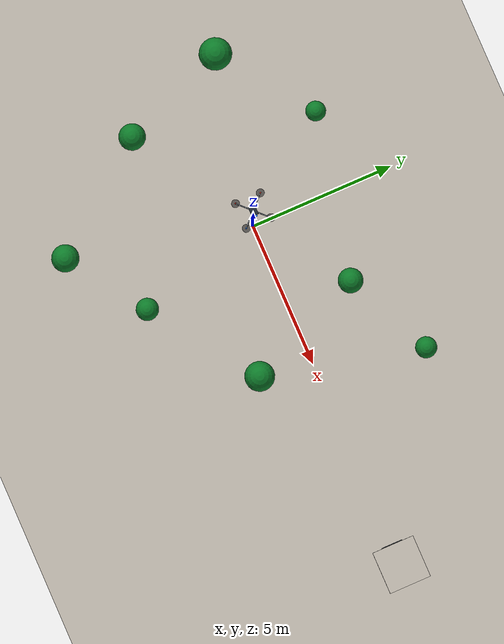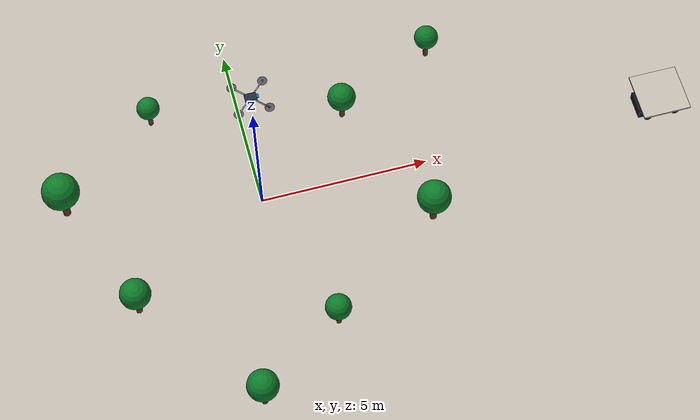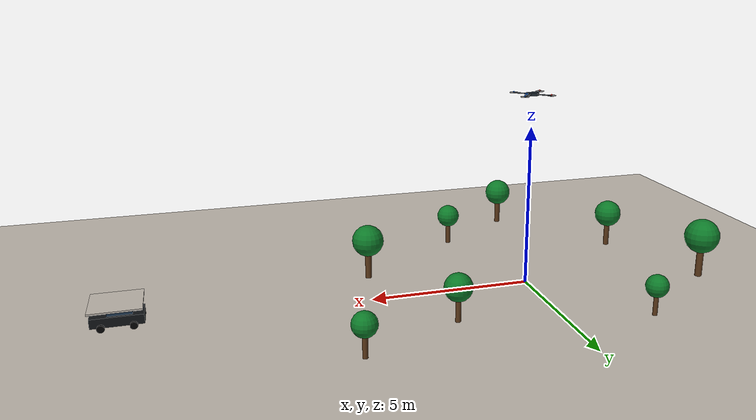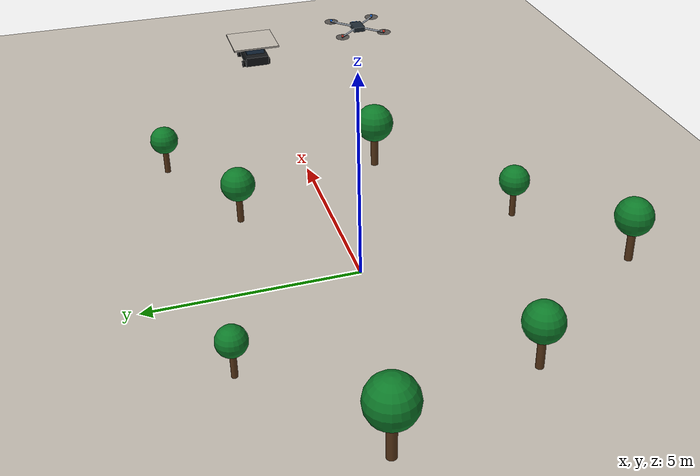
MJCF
<mujoco model="quadcopter_basic_scene">
  <compiler angle="degree" autolimits="true"/>

  <option timestep="0.002" gravity="0 0 -9.81" integrator="RK4"/>

  <visual>
    <headlight diffuse="0.95 0.95 0.9" ambient="0.55 0.58 0.62" specular="0.15 0.15 0.15"/>
    <rgba haze="0.53 0.75 1 1"/>
    <global azimuth="135" elevation="-25" offwidth="1920" offheight="1080"/>
  </visual>

  <asset>
    <texture name="sky" type="skybox" builtin="flat" width="512" height="512"
             rgb1="0.53 0.75 1" rgb2="0.53 0.75 1"/>
    <texture name="meadow" type="2d" file="../assets/flowery_meadow_seamless.png"/>
    <texture name="aruco_board" type="2d" file="../assets/aruco_board.png"/>
    <material name="floor_grid" texture="meadow" texrepeat="1 1" texuniform="true"
              reflectance="0" specular="0.04" shininess="0.1"/>
    <material name="body_mat" rgba="0.12 0.16 0.2 1"/>
    <material name="arm_mat" rgba="0.65 0.68 0.72 1"/>
    <material name="front_mat" rgba="0.1 0.45 0.95 1"/>
    <material name="rear_mat" rgba="0.95 0.24 0.18 1"/>
    <material name="prop_mat" rgba="0.05 0.05 0.055 0.55"/>
    <material name="car_body_mat" rgba="0.07 0.08 0.09 1" specular="0.25" shininess="0.45"/>
    <material name="car_window_mat" rgba="0.12 0.22 0.32 1" specular="0.4" shininess="0.6"/>
    <material name="wheel_mat" rgba="0.015 0.015 0.015 1"/>
    <material name="aruco_mat" texture="aruco_board" texrepeat="1 1" texuniform="false"
              specular="0" shininess="0"/>
    <material name="trunk_mat" rgba="0.36 0.22 0.1 1"/>
    <material name="leaf_mat" rgba="0.05 0.48 0.16 1"/>
  </asset>

  <worldbody>
    <light name="sun" directional="true" castshadow="true" pos="-3 -4 8" dir="0.35 0.45 -1"
           diffuse="0.95 0.95 0.9" ambient="0.45 0.48 0.52" specular="0.12 0.12 0.12"/>
    <geom name="floor" type="plane" size="200 200 0.05" material="floor_grid"/>

    <body name="tree_01" pos="3.0 2.2 0">
      <geom name="tree_01_trunk" type="cylinder" pos="0 0 0.45" size="0.08 0.45" material="trunk_mat"/>
      <geom name="tree_01_leaves" type="sphere" pos="0 0 1.05" size="0.42" material="leaf_mat"/>
    </body>
    <body name="tree_02" pos="-2.6 3.4 0">
      <geom name="tree_02_trunk" type="cylinder" pos="0 0 0.35" size="0.07 0.35" material="trunk_mat"/>
      <geom name="tree_02_leaves" type="sphere" pos="0 0 0.9" size="0.34" material="leaf_mat"/>
    </body>
    <body name="tree_03" pos="4.7 -1.8 0">
      <geom name="tree_03_trunk" type="cylinder" pos="0 0 0.55" size="0.1 0.55" material="trunk_mat"/>
      <geom name="tree_03_leaves" type="sphere" pos="0 0 1.25" size="0.5" material="leaf_mat"/>
    </body>
    <body name="tree_04" pos="-4.2 -2.5 0">
      <geom name="tree_04_trunk" type="cylinder" pos="0 0 0.5" size="0.09 0.5" material="trunk_mat"/>
      <geom name="tree_04_leaves" type="sphere" pos="0 0 1.15" size="0.45" material="leaf_mat"/>
    </body>
    <body name="tree_05" pos="1.2 -4.3 0">
      <geom name="tree_05_trunk" type="cylinder" pos="0 0 0.42" size="0.075 0.42" material="trunk_mat"/>
      <geom name="tree_05_leaves" type="sphere" pos="0 0 1.0" size="0.38" material="leaf_mat"/>
    </body>
    <body name="tree_06" pos="-5.6 1.1 0">
      <geom name="tree_06_trunk" type="cylinder" pos="0 0 0.6" size="0.11 0.6" material="trunk_mat"/>
      <geom name="tree_06_leaves" type="sphere" pos="0 0 1.35" size="0.55" material="leaf_mat"/>
    </body>
    <body name="tree_07" pos="6.0 3.6 0">
      <geom name="tree_07_trunk" type="cylinder" pos="0 0 0.4" size="0.075 0.4" material="trunk_mat"/>
      <geom name="tree_07_leaves" type="sphere" pos="0 0 0.95" size="0.36" material="leaf_mat"/>
    </body>
    <body name="tree_08" pos="-1.4 -6.1 0">
      <geom name="tree_08_trunk" type="cylinder" pos="0 0 0.52" size="0.095 0.52" material="trunk_mat"/>
      <geom name="tree_08_leaves" type="sphere" pos="0 0 1.18" size="0.46" material="leaf_mat"/>
    </body>

    <body name="landing_car" pos="12.2 0 0.22">
      <joint name="landing_car_x" type="slide" axis="1 0 0" damping="2.0"/>
      <joint name="landing_car_y" type="slide" axis="0 1 0" damping="2.0"/>
      <geom name="car_chassis" type="box" pos="0 0 0.18" size="0.72 0.36 0.14"
            mass="4.0" material="car_body_mat"/>
      <geom name="car_cabin" type="box" pos="-0.08 0 0.42" size="0.34 0.28 0.13"
            mass="1.0" material="car_window_mat"/>
      <geom name="landing_platform" type="box" pos="0 0 0.61" size="0.72 0.72 0.025"
            mass="0.7" material="aruco_mat"/>
      <geom name="wheel_fl" type="cylinder" pos="0.43 0.39 0.04" euler="90 0 0"
            size="0.105 0.055" mass="0.25" material="wheel_mat"/>
      <geom name="wheel_fr" type="cylinder" pos="0.43 -0.39 0.04" euler="90 0 0"
            size="0.105 0.055" mass="0.25" material="wheel_mat"/>
      <geom name="wheel_rl" type="cylinder" pos="-0.43 0.39 0.04" euler="90 0 0"
            size="0.105 0.055" mass="0.25" material="wheel_mat"/>
      <geom name="wheel_rr" type="cylinder" pos="-0.43 -0.39 0.04" euler="90 0 0"
            size="0.105 0.055" mass="0.25" material="wheel_mat"/>
    </body>

    <body name="quadcopter" pos="0 0 6.0">
      <freejoint name="root"/>

      <camera name="drone_cam" pos="0.16 0 -0.035" xyaxes="0 -1 0 0.7071068 0 0.7071068"
              fovy="65"/>

      <geom name="body" type="box" size="0.16 0.11 0.045" mass="0.35" material="body_mat" />
      <geom name="front_marker" type="box" pos="0.18 0 0.01" size="0.035 0.055 0.02"
            mass="0.002" material="front_mat"/>

      <geom name="front_left_arm" type="capsule" fromto="0 0 0 0.42 0.42 0" size="0.018"
            mass="0.055" material="arm_mat"/>
      <geom name="front_right_arm" type="capsule" fromto="0 0 0 0.42 -0.42 0" size="0.018"
            mass="0.055" material="arm_mat"/>
      <geom name="rear_left_arm" type="capsule" fromto="0 0 0 -0.42 0.42 0" size="0.018"
            mass="0.055" material="arm_mat"/>
      <geom name="rear_right_arm" type="capsule" fromto="0 0 0 -0.42 -0.42 0" size="0.018"
            mass="0.055" material="arm_mat"/>

      <body name="rotor_fl" pos="0.42 0.42 0">
        <geom type="cylinder" size="0.13 0.006" mass="0.025" material="prop_mat"/>
        <site name="thrust_fl" pos="0 0 0.02" size="0.025" rgba="0.1 0.45 0.95 1"/>
      </body>
      <body name="rotor_fr" pos="0.42 -0.42 0">
        <geom type="cylinder" size="0.13 0.006" mass="0.025" material="prop_mat"/>
        <site name="thrust_fr" pos="0 0 0.02" size="0.025" rgba="0.1 0.45 0.95 1"/>
      </body>
      <body name="rotor_rl" pos="-0.42 0.42 0">
        <geom type="cylinder" size="0.13 0.006" mass="0.025" material="prop_mat"/>
        <site name="thrust_rl" pos="0 0 0.02" size="0.025" rgba="0.95 0.24 0.18 1"/>
      </body>
      <body name="rotor_rr" pos="-0.42 -0.42 0">
        <geom type="cylinder" size="0.13 0.006" mass="0.025" material="prop_mat"/>
        <site name="thrust_rr" pos="0 0 0.02" size="0.025" rgba="0.95 0.24 0.18 1"/>
      </body>
    </body>
  </worldbody>
</mujoco>
